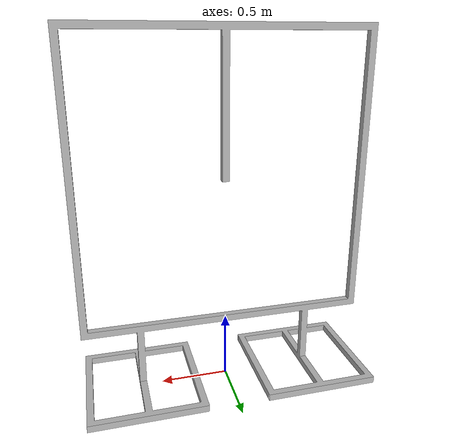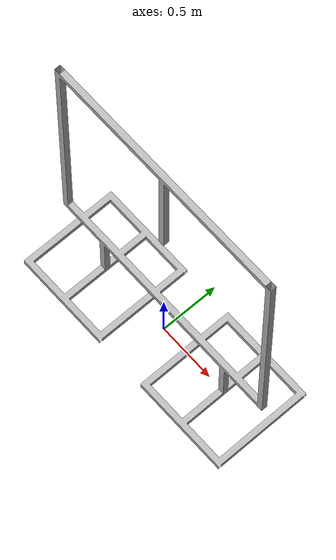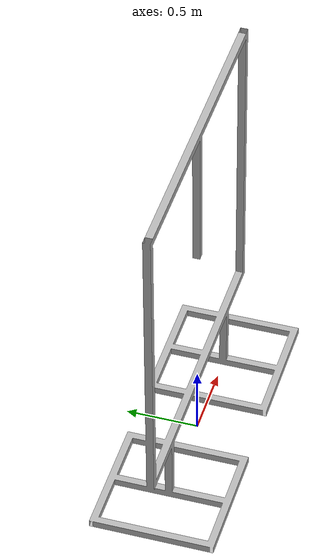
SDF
<?xml version='1.0'?>
<sdf version='1.4'>
  <model name="dronerace dynamic gate 2018">
    <static>true</static>
    <pose>0 0 0 0 0 0</pose>

    <link name="dronerace dynamic gate 2018">
      <visual name="gate">
        <geometry>
          <mesh>
            <uri>model://dronerace_dynamicgate_2018/dynamic_gate_2018.dae</uri>
          </mesh>
        </geometry>
      </visual>
      <collision name="gate_collision">
        <geometry>
          <mesh>
            <uri>model://dronerace_dynamicgate_2018/dynamic_gate_2018.dae</uri>
          </mesh>
        </geometry>
      </collision>
    </link>

  </model>
</sdf>
